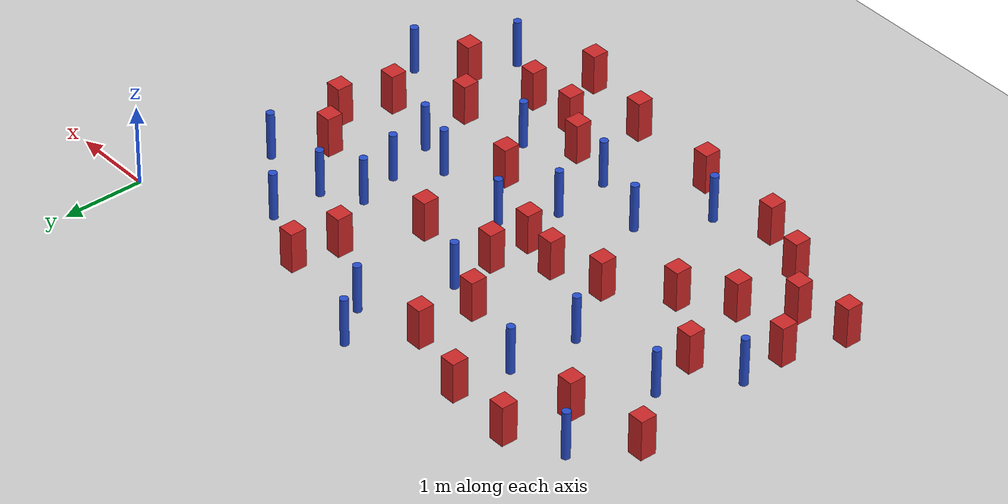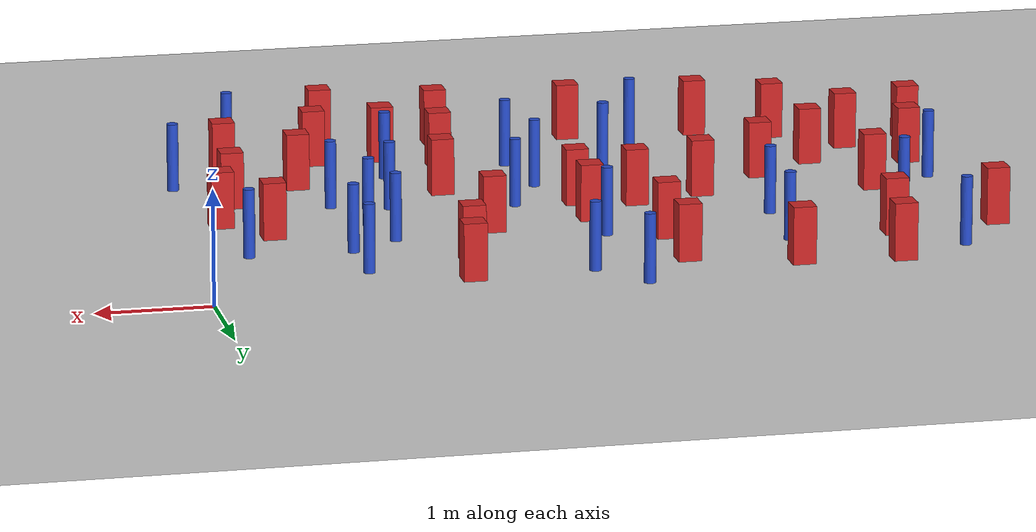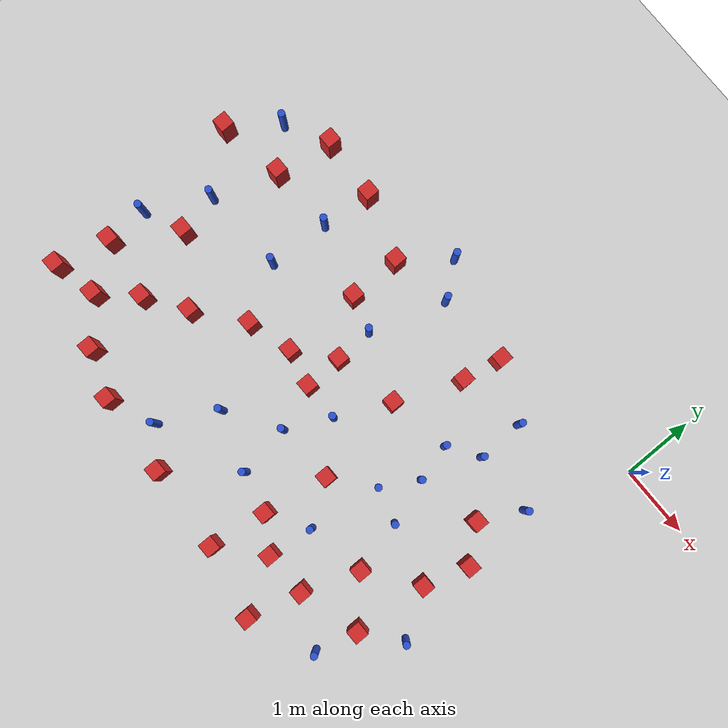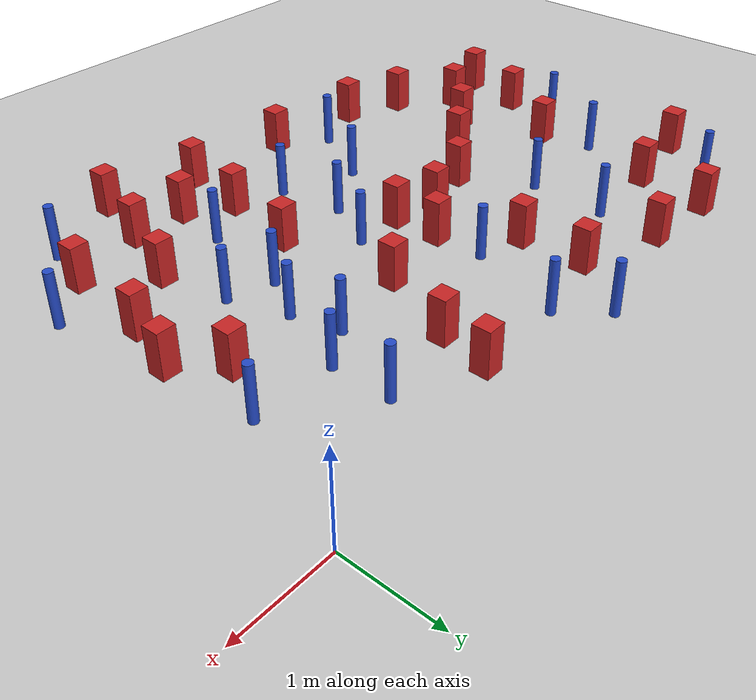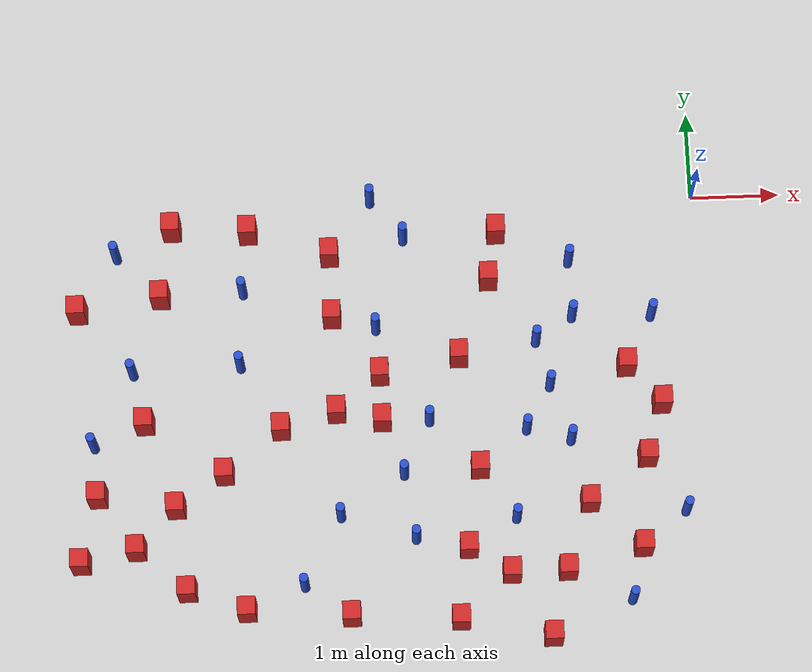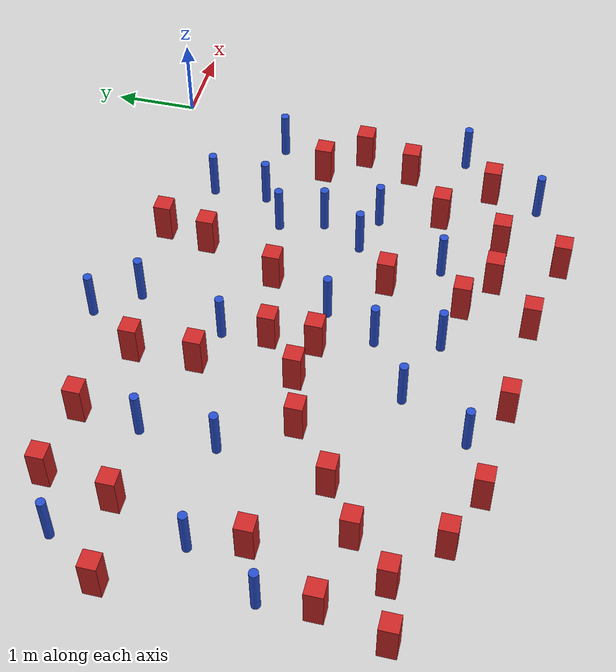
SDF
<sdf version="1.6">
 <world name="default">
  <model name="ground_plane">
   <static>1</static>
   <link name="link">
    <collision name="collision">
     <geometry><plane><normal>0 0 1</normal><size>100 100</size></plane></geometry>
     <surface><friction><ode><mu>100</mu><mu2>50</mu2></ode></friction></surface>
    </collision>
    <visual name="visual">
     <cast_shadows>0</cast_shadows>
     <geometry><plane><normal>0 0 1</normal><size>100 100</size></plane></geometry>
     <material>
      <ambient>1.0 1.0 1.0 1.0</ambient>
      <diffuse>0.8 0.8 0.8 1.0</diffuse>
      <specular>0.01 0.01 0.01 1.000000</specular>
     </material>
    </visual>
   </link>
  </model>
  <model name="pole_obstacle0">
   <static>true</static>
   <pose>-2.14201029475 -3.68788135447 2.88873142074e-08 -9.90536690232e-09 4.6021994898e-07 -1.20965994968e-07</pose>
   <link name="link">
    <pose>0 0 0.3 0 -0 0</pose>
    <inertial>
     <mass>1</mass>
     <inertia><ixx>0.145833</ixx><ixy>0</ixy><ixz>0</ixz><iyy>0.145833</iyy><iyz>0</iyz><izz>0.125</izz></inertia>
    </inertial>
    <collision name="collision">
     <geometry><cylinder><radius>0.05</radius><length>.6</length></cylinder></geometry>
    </collision>
    <visual name="visual">
     <geometry><cylinder><radius>0.05</radius><length>.6</length></cylinder></geometry>
     <material>
      <script><name>Gazebo/Blue</name><uri>file://media/materials/scripts/gazebo.material</uri></script>
     </material>
    </visual>
   </link>
  </model>
  <model name="pole_obstacle18">
   <static>true</static>
   <pose>-1.43963287197 -0.740293732922 2.88873142074e-08 -9.90536689692e-09 4.60219948993e-07 -1.20965994958e-07</pose>
   <link name="link">
    <pose>0 0 0.3 0 -0 0</pose>
    <inertial>
     <mass>1</mass>
     <inertia><ixx>0.145833</ixx><ixy>0</ixy><ixz>0</ixz><iyy>0.145833</iyy><iyz>0</iyz><izz>0.125</izz></inertia>
    </inertial>
    <collision name="collision">
     <geometry><cylinder><radius>0.05</radius><length>.6</length></cylinder></geometry>
    </collision>
    <visual name="visual">
     <geometry><cylinder><radius>0.05</radius><length>.6</length></cylinder></geometry>
     <material>
      <script><name>Gazebo/Blue</name><uri>file://media/materials/scripts/gazebo.material</uri></script>
     </material>
    </visual>
   </link>
  </model>
  <model name="square_post_obstacle32">
   <static>true</static>
   <pose>-1.60397399071 -4.29752524719 8.22691968438e-08 7.2212513382e-06 -7.54495500217e-07 2.29674213826e-05</pose>
   <link name="link">
    <pose>0 0 0.25 0 -0 0</pose>
    <inertial>
     <mass>100</mass>
     <inertia>
      <ixx>0.166667</ixx>
      <ixy>0</ixy>
      <ixz>0</ixz>
      <iyy>0.166667</iyy>
      <iyz>0</iyz>
      <izz>0.166667</izz>
     </inertia>
    </inertial>
    <collision name="collision"><geometry><box><size>.2 .2 .5</size></box></geometry></collision>
    <visual name="visual">
     <geometry><box><size>.2 .2 .5</size></box></geometry>
     <material>
      <script><name>Gazebo/Red</name><uri>file://media/materials/scripts/gazebo.material</uri></script>
     </material>
    </visual>
   </link>
  </model>
  <model name="square_post_obstacle33">
   <static>true</static>
   <pose>-6.96177283811 -4.0509409341 8.22691968438e-08 7.2212513382e-06 -7.54495500217e-07 2.29674213826e-05</pose>
   <link name="link">
    <pose>0 0 0.25 0 -0 0</pose>
    <inertial>
     <mass>100</mass>
     <inertia>
      <ixx>0.166667</ixx>
      <ixy>0</ixy>
      <ixz>0</ixz>
      <iyy>0.166667</iyy>
      <iyz>0</iyz>
      <izz>0.166667</izz>
     </inertia>
    </inertial>
    <collision name="collision"><geometry><box><size>.2 .2 .5</size></box></geometry></collision>
    <visual name="visual">
     <geometry><box><size>.2 .2 .5</size></box></geometry>
     <material>
      <script><name>Gazebo/Red</name><uri>file://media/materials/scripts/gazebo.material</uri></script>
     </material>
    </visual>
   </link>
  </model>
  <model name="pole_obstacle28">
   <static>true</static>
   <pose>-3.66332309198 0.0499657390168 2.88873142074e-08 -9.905366921e-09 4.60219948936e-07 -1.20965994985e-07</pose>
   <link name="link">
    <pose>0 0 0.3 0 -0 0</pose>
    <inertial>
     <mass>1</mass>
     <inertia><ixx>0.145833</ixx><ixy>0</ixy><ixz>0</ixz><iyy>0.145833</iyy><iyz>0</iyz><izz>0.125</izz></inertia>
    </inertial>
    <collision name="collision">
     <geometry><cylinder><radius>0.05</radius><length>.6</length></cylinder></geometry>
    </collision>
    <visual name="visual">
     <geometry><cylinder><radius>0.05</radius><length>.6</length></cylinder></geometry>
     <material>
      <script><name>Gazebo/Blue</name><uri>file://media/materials/scripts/gazebo.material</uri></script>
     </material>
    </visual>
   </link>
  </model>
  <model name="pole_obstacle29">
   <static>true</static>
   <pose>-5.12668425544 -0.987686149836 2.88873142074e-08 -9.90536689779e-09 4.60219948991e-07 -1.20965994959e-07</pose>
   <link name="link">
    <pose>0 0 0.3 0 -0 0</pose>
    <inertial>
     <mass>1</mass>
     <inertia><ixx>0.145833</ixx><ixy>0</ixy><ixz>0</ixz><iyy>0.145833</iyy><iyz>0</iyz><izz>0.125</izz></inertia>
    </inertial>
    <collision name="collision">
     <geometry><cylinder><radius>0.05</radius><length>.6</length></cylinder></geometry>
    </collision>
    <visual name="visual">
     <geometry><cylinder><radius>0.05</radius><length>.6</length></cylinder></geometry>
     <material>
      <script><name>Gazebo/Blue</name><uri>file://media/materials/scripts/gazebo.material</uri></script>
     </material>
    </visual>
   </link>
  </model>
  <model name="square_post_obstacle34">
   <static>true</static>
   <pose>-5.91761013218 -0.226882809357 8.22691968438e-08 7.2212513382e-06 -7.54495500217e-07 2.29674213826e-05</pose>
   <link name="link">
    <pose>0 0 0.25 0 -0 0</pose>
    <inertial>
     <mass>100</mass>
     <inertia>
      <ixx>0.166667</ixx>
      <ixy>0</ixy>
      <ixz>0</ixz>
      <iyy>0.166667</iyy>
      <iyz>0</iyz>
      <izz>0.166667</izz>
     </inertia>
    </inertial>
    <collision name="collision"><geometry><box><size>.2 .2 .5</size></box></geometry></collision>
    <visual name="visual">
     <geometry><box><size>.2 .2 .5</size></box></geometry>
     <material>
      <script><name>Gazebo/Red</name><uri>file://media/materials/scripts/gazebo.material</uri></script>
     </material>
    </visual>
   </link>
  </model>
  <model name="pole_obstacle32">
   <static>true</static>
   <pose>-3.30271459691 -0.412080619254 2.88873142074e-08 -9.90536690784e-09 4.60219948967e-07 -1.20965994976e-07</pose>
   <link name="link">
    <pose>0 0 0.3 0 -0 0</pose>
    <inertial>
     <mass>1</mass>
     <inertia><ixx>0.145833</ixx><ixy>0</ixy><ixz>0</ixz><iyy>0.145833</iyy><iyz>0</iyz><izz>0.125</izz></inertia>
    </inertial>
    <collision name="collision">
     <geometry><cylinder><radius>0.05</radius><length>.6</length></cylinder></geometry>
    </collision>
    <visual name="visual">
     <geometry><cylinder><radius>0.05</radius><length>.6</length></cylinder></geometry>
     <material>
      <script><name>Gazebo/Blue</name><uri>file://media/materials/scripts/gazebo.material</uri></script>
     </material>
    </visual>
   </link>
  </model>
  <model name="pole_obstacle34">
   <static>true</static>
   <pose>-3.63977779971 -1.46137403653 2.88873142074e-08 -9.90536691123e-09 4.60219948959e-07 -1.20965994982e-07</pose>
   <link name="link">
    <pose>0 0 0.3 0 -0 0</pose>
    <inertial>
     <mass>1</mass>
     <inertia><ixx>0.145833</ixx><ixy>0</ixy><ixz>0</ixz><iyy>0.145833</iyy><iyz>0</iyz><izz>0.125</izz></inertia>
    </inertial>
    <collision name="collision">
     <geometry><cylinder><radius>0.05</radius><length>.6</length></cylinder></geometry>
    </collision>
    <visual name="visual">
     <geometry><cylinder><radius>0.05</radius><length>.6</length></cylinder></geometry>
     <material>
      <script><name>Gazebo/Blue</name><uri>file://media/materials/scripts/gazebo.material</uri></script>
     </material>
    </visual>
   </link>
  </model>
  <model name="pole_obstacle35">
   <static>true</static>
   <pose>-0.537845750182 -1.40709177171 2.88873142074e-08 -9.90536689621e-09 4.60219948994e-07 -1.20965994957e-07</pose>
   <link name="link">
    <pose>0 0 0.3 0 -0 0</pose>
    <inertial>
     <mass>1</mass>
     <inertia><ixx>0.145833</ixx><ixy>0</ixy><ixz>0</ixz><iyy>0.145833</iyy><iyz>0</iyz><izz>0.125</izz></inertia>
    </inertial>
    <collision name="collision">
     <geometry><cylinder><radius>0.05</radius><length>.6</length></cylinder></geometry>
    </collision>
    <visual name="visual">
     <geometry><cylinder><radius>0.05</radius><length>.6</length></cylinder></geometry>
     <material>
      <script><name>Gazebo/Blue</name><uri>file://media/materials/scripts/gazebo.material</uri></script>
     </material>
    </visual>
   </link>
  </model>
  <model name="square_post_obstacle36">
   <static>true</static>
   <pose>-1.3263271981 -3.53499737316 8.22691968438e-08 7.2212513382e-06 -7.54495500217e-07 2.29674213826e-05</pose>
   <link name="link">
    <pose>0 0 0.25 0 -0 0</pose>
    <inertial>
     <mass>100</mass>
     <inertia>
      <ixx>0.166667</ixx>
      <ixy>0</ixy>
      <ixz>0</ixz>
      <iyy>0.166667</iyy>
      <iyz>0</iyz>
      <izz>0.166667</izz>
     </inertia>
    </inertial>
    <collision name="collision"><geometry><box><size>.2 .2 .5</size></box></geometry></collision>
    <visual name="visual">
     <geometry><box><size>.2 .2 .5</size></box></geometry>
     <material>
      <script><name>Gazebo/Red</name><uri>file://media/materials/scripts/gazebo.material</uri></script>
     </material>
    </visual>
   </link>
  </model>
  <model name="square_post_obstacle39">
   <static>true</static>
   <pose>-3.61016538908 -2.00022912699 8.22691968438e-08 7.22125133819e-06 -7.54495500217e-07 2.29674213826e-05</pose>
   <link name="link">
    <pose>0 0 0.25 0 -0 0</pose>
    <inertial>
     <mass>100</mass>
     <inertia>
      <ixx>0.166667</ixx>
      <ixy>0</ixy>
      <ixz>0</ixz>
      <iyy>0.166667</iyy>
      <iyz>0</iyz>
      <izz>0.166667</izz>
     </inertia>
    </inertial>
    <collision name="collision"><geometry><box><size>.2 .2 .5</size></box></geometry></collision>
    <visual name="visual">
     <geometry><box><size>.2 .2 .5</size></box></geometry>
     <material>
      <script><name>Gazebo/Red</name><uri>file://media/materials/scripts/gazebo.material</uri></script>
     </material>
    </visual>
   </link>
  </model>
  <model name="square_post_obstacle47">
   <static>true</static>
   <pose>-5.05521894171 -0.291155681493 8.22691968438e-08 7.2212513382e-06 -7.54495500217e-07 2.29674213826e-05</pose>
   <link name="link">
    <pose>0 0 0.25 0 -0 0</pose>
    <inertial>
     <mass>100</mass>
     <inertia>
      <ixx>0.166667</ixx>
      <ixy>0</ixy>
      <ixz>0</ixz>
      <iyy>0.166667</iyy>
      <iyz>0</iyz>
      <izz>0.166667</izz>
     </inertia>
    </inertial>
    <collision name="collision"><geometry><box><size>.2 .2 .5</size></box></geometry></collision>
    <visual name="visual">
     <geometry><box><size>.2 .2 .5</size></box></geometry>
     <material>
      <script><name>Gazebo/Red</name><uri>file://media/materials/scripts/gazebo.material</uri></script>
     </material>
    </visual>
   </link>
  </model>
  <model name="pole_obstacle48">
   <static>true</static>
   <pose>-1.70938843151 -2.18825370533 2.88873142074e-08 -9.90536689791e-09 4.6021994899e-07 -1.20965994959e-07</pose>
   <link name="link">
    <pose>0 0 0.3 0 -0 0</pose>
    <inertial>
     <mass>1</mass>
     <inertia><ixx>0.145833</ixx><ixy>0</ixy><ixz>0</ixz><iyy>0.145833</iyy><iyz>0</iyz><izz>0.125</izz></inertia>
    </inertial>
    <collision name="collision">
     <geometry><cylinder><radius>0.05</radius><length>.6</length></cylinder></geometry>
    </collision>
    <visual name="visual">
     <geometry><cylinder><radius>0.05</radius><length>.6</length></cylinder></geometry>
     <material>
      <script><name>Gazebo/Blue</name><uri>file://media/materials/scripts/gazebo.material</uri></script>
     </material>
    </visual>
   </link>
  </model>
  <model name="square_post_obstacle51">
   <static>true</static>
   <pose>-6.34993966018 -3.91682586091 8.22691968438e-08 7.22125133819e-06 -7.54495500217e-07 2.29674213826e-05</pose>
   <link name="link">
    <pose>0 0 0.25 0 -0 0</pose>
    <inertial>
     <mass>100</mass>
     <inertia>
      <ixx>0.166667</ixx>
      <ixy>0</ixy>
      <ixz>0</ixz>
      <iyy>0.166667</iyy>
      <iyz>0</iyz>
      <izz>0.166667</izz>
     </inertia>
    </inertial>
    <collision name="collision"><geometry><box><size>.2 .2 .5</size></box></geometry></collision>
    <visual name="visual">
     <geometry><box><size>.2 .2 .5</size></box></geometry>
     <material>
      <script><name>Gazebo/Red</name><uri>file://media/materials/scripts/gazebo.material</uri></script>
     </material>
    </visual>
   </link>
  </model>
  <model name="pole_obstacle54">
   <static>true</static>
   <pose>-3.37114081809 -3.15126703012 2.88873142074e-08 -9.90536689597e-09 4.60219948995e-07 -1.20965994957e-07</pose>
   <link name="link">
    <pose>0 0 0.3 0 -0 0</pose>
    <inertial>
     <mass>1</mass>
     <inertia><ixx>0.145833</ixx><ixy>0</ixy><ixz>0</ixz><iyy>0.145833</iyy><iyz>0</iyz><izz>0.125</izz></inertia>
    </inertial>
    <collision name="collision">
     <geometry><cylinder><radius>0.05</radius><length>.6</length></cylinder></geometry>
    </collision>
    <visual name="visual">
     <geometry><cylinder><radius>0.05</radius><length>.6</length></cylinder></geometry>
     <material>
      <script><name>Gazebo/Blue</name><uri>file://media/materials/scripts/gazebo.material</uri></script>
     </material>
    </visual>
   </link>
  </model>
  <model name="square_post_obstacle59">
   <static>true</static>
   <pose>-2.68510620087 -4.01180483356 8.22691968438e-08 7.2212513382e-06 -7.54495500217e-07 2.29674213826e-05</pose>
   <link name="link">
    <pose>0 0 0.25 0 -0 0</pose>
    <inertial>
     <mass>100</mass>
     <inertia>
      <ixx>0.166667</ixx>
      <ixy>0</ixy>
      <ixz>0</ixz>
      <iyy>0.166667</iyy>
      <iyz>0</iyz>
      <izz>0.166667</izz>
     </inertia>
    </inertial>
    <collision name="collision"><geometry><box><size>.2 .2 .5</size></box></geometry></collision>
    <visual name="visual">
     <geometry><box><size>.2 .2 .5</size></box></geometry>
     <material>
      <script><name>Gazebo/Red</name><uri>file://media/materials/scripts/gazebo.material</uri></script>
     </material>
    </visual>
   </link>
  </model>
  <model name="square_post_obstacle62">
   <static>true</static>
   <pose>-0.759701949642 -4.05870089898 8.22691968438e-08 7.2212513382e-06 -7.54495500217e-07 2.29674213826e-05</pose>
   <link name="link">
    <pose>0 0 0.25 0 -0 0</pose>
    <inertial>
     <mass>100</mass>
     <inertia>
      <ixx>0.166667</ixx>
      <ixy>0</ixy>
      <ixz>0</ixz>
      <iyy>0.166667</iyy>
      <iyz>0</iyz>
      <izz>0.166667</izz>
     </inertia>
    </inertial>
    <collision name="collision"><geometry><box><size>.2 .2 .5</size></box></geometry></collision>
    <visual name="visual">
     <geometry><box><size>.2 .2 .5</size></box></geometry>
     <material>
      <script><name>Gazebo/Red</name><uri>file://media/materials/scripts/gazebo.material</uri></script>
     </material>
    </visual>
   </link>
  </model>
  <model name="pole_obstacle62">
   <static>true</static>
   <pose>-6.37447288988 -1.89802834901 2.88873142074e-08 -9.90536689445e-09 4.60219948999e-07 -1.20965994956e-07</pose>
   <link name="link">
    <pose>0 0 0.3 0 -0 0</pose>
    <inertial>
     <mass>1</mass>
     <inertia><ixx>0.145833</ixx><ixy>0</ixy><ixz>0</ixz><iyy>0.145833</iyy><iyz>0</iyz><izz>0.125</izz></inertia>
    </inertial>
    <collision name="collision">
     <geometry><cylinder><radius>0.05</radius><length>.6</length></cylinder></geometry>
    </collision>
    <visual name="visual">
     <geometry><cylinder><radius>0.05</radius><length>.6</length></cylinder></geometry>
     <material>
      <script><name>Gazebo/Blue</name><uri>file://media/materials/scripts/gazebo.material</uri></script>
     </material>
    </visual>
   </link>
  </model>
  <model name="pole_obstacle63">
   <static>true</static>
   <pose>-6.54925913432 -0.52366604144 2.88873142074e-08 -9.90536689968e-09 4.60219948986e-07 -1.20965994963e-07</pose>
   <link name="link">
    <pose>0 0 0.3 0 -0 0</pose>
    <inertial>
     <mass>1</mass>
     <inertia><ixx>0.145833</ixx><ixy>0</ixy><ixz>0</ixz><iyy>0.145833</iyy><iyz>0</iyz><izz>0.125</izz></inertia>
    </inertial>
    <collision name="collision">
     <geometry><cylinder><radius>0.05</radius><length>.6</length></cylinder></geometry>
    </collision>
    <visual name="visual">
     <geometry><cylinder><radius>0.05</radius><length>.6</length></cylinder></geometry>
     <material>
      <script><name>Gazebo/Blue</name><uri>file://media/materials/scripts/gazebo.material</uri></script>
     </material>
    </visual>
   </link>
  </model>
  <model name="square_post_obstacle71">
   <static>true</static>
   <pose>-5.90890364408 -3.45529140381 8.22691968438e-08 7.2212513382e-06 -7.54495500217e-07 2.29674213826e-05</pose>
   <link name="link">
    <pose>0 0 0.25 0 -0 0</pose>
    <inertial>
     <mass>100</mass>
     <inertia>
      <ixx>0.166667</ixx>
      <ixy>0</ixy>
      <ixz>0</ixz>
      <iyy>0.166667</iyy>
      <iyz>0</iyz>
      <izz>0.166667</izz>
     </inertia>
    </inertial>
    <collision name="collision"><geometry><box><size>.2 .2 .5</size></box></geometry></collision>
    <visual name="visual">
     <geometry><box><size>.2 .2 .5</size></box></geometry>
     <material>
      <script><name>Gazebo/Red</name><uri>file://media/materials/scripts/gazebo.material</uri></script>
     </material>
    </visual>
   </link>
  </model>
  <model name="square_post_obstacle75">
   <static>true</static>
   <pose>-0.845391485321 -1.98824636678 8.22691968438e-08 7.2212513382e-06 -7.54495500217e-07 2.29674213826e-05</pose>
   <link name="link">
    <pose>0 0 0.25 0 -0 0</pose>
    <inertial>
     <mass>100</mass>
     <inertia>
      <ixx>0.166667</ixx>
      <ixy>0</ixy>
      <ixz>0</ixz>
      <iyy>0.166667</iyy>
      <iyz>0</iyz>
      <izz>0.166667</izz>
     </inertia>
    </inertial>
    <collision name="collision"><geometry><box><size>.2 .2 .5</size></box></geometry></collision>
    <visual name="visual">
     <geometry><box><size>.2 .2 .5</size></box></geometry>
     <material>
      <script><name>Gazebo/Red</name><uri>file://media/materials/scripts/gazebo.material</uri></script>
     </material>
    </visual>
   </link>
  </model>
  <model name="square_post_obstacle76">
   <static>true</static>
   <pose>-3.99669923354 -4.73402493991 8.22691968438e-08 7.22125133819e-06 -7.54495500217e-07 2.29674213826e-05</pose>
   <link name="link">
    <pose>0 0 0.25 0 -0 0</pose>
    <inertial>
     <mass>100</mass>
     <inertia>
      <ixx>0.166667</ixx>
      <ixy>0</ixy>
      <ixz>0</ixz>
      <iyy>0.166667</iyy>
      <iyz>0</iyz>
      <izz>0.166667</izz>
     </inertia>
    </inertial>
    <collision name="collision"><geometry><box><size>.2 .2 .5</size></box></geometry></collision>
    <visual name="visual">
     <geometry><box><size>.2 .2 .5</size></box></geometry>
     <material>
      <script><name>Gazebo/Red</name><uri>file://media/materials/scripts/gazebo.material</uri></script>
     </material>
    </visual>
   </link>
  </model>
  <model name="pole_obstacle72">
   <static>true</static>
   <pose>-1.42830992179 -1.39045485473 2.88873142074e-08 -9.90536689672e-09 4.60219948993e-07 -1.20965994959e-07</pose>
   <link name="link">
    <pose>0 0 0.3 0 -0 0</pose>
    <inertial>
     <mass>1</mass>
     <inertia><ixx>0.145833</ixx><ixy>0</ixy><ixz>0</ixz><iyy>0.145833</iyy><iyz>0</iyz><izz>0.125</izz></inertia>
    </inertial>
    <collision name="collision">
     <geometry><cylinder><radius>0.05</radius><length>.6</length></cylinder></geometry>
    </collision>
    <visual name="visual">
     <geometry><cylinder><radius>0.05</radius><length>.6</length></cylinder></geometry>
     <material>
      <script><name>Gazebo/Blue</name><uri>file://media/materials/scripts/gazebo.material</uri></script>
     </material>
    </visual>
   </link>
  </model>
  <model name="pole_obstacle75">
   <static>true</static>
   <pose>-0.259279563967 -3.67015046062 2.88873142074e-08 -9.90536689433e-09 4.60219948999e-07 -1.20965994955e-07</pose>
   <link name="link">
    <pose>0 0 0.3 0 -0 0</pose>
    <inertial>
     <mass>1</mass>
     <inertia><ixx>0.145833</ixx><ixy>0</ixy><ixz>0</ixz><iyy>0.145833</iyy><iyz>0</iyz><izz>0.125</izz></inertia>
    </inertial>
    <collision name="collision">
     <geometry><cylinder><radius>0.05</radius><length>.6</length></cylinder></geometry>
    </collision>
    <visual name="visual">
     <geometry><cylinder><radius>0.05</radius><length>.6</length></cylinder></geometry>
     <material>
      <script><name>Gazebo/Blue</name><uri>file://media/materials/scripts/gazebo.material</uri></script>
     </material>
    </visual>
   </link>
  </model>
  <model name="square_post_obstacle86">
   <static>true</static>
   <pose>-5.14202955763 -4.64403465096 8.22691968438e-08 7.22125133819e-06 -7.54495500217e-07 2.29674213826e-05</pose>
   <link name="link">
    <pose>0 0 0.25 0 -0 0</pose>
    <inertial>
     <mass>100</mass>
     <inertia>
      <ixx>0.166667</ixx>
      <ixy>0</ixy>
      <ixz>0</ixz>
      <iyy>0.166667</iyy>
      <iyz>0</iyz>
      <izz>0.166667</izz>
     </inertia>
    </inertial>
    <collision name="collision"><geometry><box><size>.2 .2 .5</size></box></geometry></collision>
    <visual name="visual">
     <geometry><box><size>.2 .2 .5</size></box></geometry>
     <material>
      <script><name>Gazebo/Red</name><uri>file://media/materials/scripts/gazebo.material</uri></script>
     </material>
    </visual>
   </link>
  </model>
  <model name="pole_obstacle97">
   <static>true</static>
   <pose>-4.08654080459 -3.60799951792 2.88873142074e-08 -9.90536690245e-09 4.6021994898e-07 -1.20965994966e-07</pose>
   <link name="link">
    <pose>0 0 0.3 0 -0 0</pose>
    <inertial>
     <mass>1</mass>
     <inertia><ixx>0.145833</ixx><ixy>0</ixy><ixz>0</ixz><iyy>0.145833</iyy><iyz>0</iyz><izz>0.125</izz></inertia>
    </inertial>
    <collision name="collision">
     <geometry><cylinder><radius>0.05</radius><length>.6</length></cylinder></geometry>
    </collision>
    <visual name="visual">
     <geometry><cylinder><radius>0.05</radius><length>.6</length></cylinder></geometry>
     <material>
      <script><name>Gazebo/Blue</name><uri>file://media/materials/scripts/gazebo.material</uri></script>
     </material>
    </visual>
   </link>
  </model>
  <model name="square_post_obstacle96">
   <static>true</static>
   <pose>-0.471499157404 -2.43140440503 8.22691968438e-08 7.2212513382e-06 -7.54495500217e-07 2.29674213826e-05</pose>
   <link name="link">
    <pose>0 0 0.25 0 -0 0</pose>
    <inertial>
     <mass>100</mass>
     <inertia>
      <ixx>0.166667</ixx>
      <ixy>0</ixy>
      <ixz>0</ixz>
      <iyy>0.166667</iyy>
      <iyz>0</iyz>
      <izz>0.166667</izz>
     </inertia>
    </inertial>
    <collision name="collision"><geometry><box><size>.2 .2 .5</size></box></geometry></collision>
    <visual name="visual">
     <geometry><box><size>.2 .2 .5</size></box></geometry>
     <material>
      <script><name>Gazebo/Red</name><uri>file://media/materials/scripts/gazebo.material</uri></script>
     </material>
    </visual>
   </link>
  </model>
  <model name="pole_obstacle112">
   <static>true</static>
   <pose>-4.50473013319 -4.38162534563 2.88873142074e-08 -9.90536690842e-09 4.60219948965e-07 -1.20965994976e-07</pose>
   <link name="link">
    <pose>0 0 0.3 0 -0 0</pose>
    <inertial>
     <mass>1</mass>
     <inertia><ixx>0.145833</ixx><ixy>0</ixy><ixz>0</ixz><iyy>0.145833</iyy><iyz>0</iyz><izz>0.125</izz></inertia>
    </inertial>
    <collision name="collision">
     <geometry><cylinder><radius>0.05</radius><length>.6</length></cylinder></geometry>
    </collision>
    <visual name="visual">
     <geometry><cylinder><radius>0.05</radius><length>.6</length></cylinder></geometry>
     <material>
      <script><name>Gazebo/Blue</name><uri>file://media/materials/scripts/gazebo.material</uri></script>
     </material>
    </visual>
   </link>
  </model>
  <model name="square_post_obstacle100">
   <static>true</static>
   <pose>-0.661795972691 -3.04216716225 8.22691968438e-08 7.2212513382e-06 -7.54495500217e-07 2.29674213826e-05</pose>
   <link name="link">
    <pose>0 0 0.25 0 -0 0</pose>
    <inertial>
     <mass>100</mass>
     <inertia>
      <ixx>0.166667</ixx>
      <ixy>0</ixy>
      <ixz>0</ixz>
      <iyy>0.166667</iyy>
      <iyz>0</iyz>
      <izz>0.166667</izz>
     </inertia>
    </inertial>
    <collision name="collision"><geometry><box><size>.2 .2 .5</size></box></geometry></collision>
    <visual name="visual">
     <geometry><box><size>.2 .2 .5</size></box></geometry>
     <material>
      <script><name>Gazebo/Red</name><uri>file://media/materials/scripts/gazebo.material</uri></script>
     </material>
    </visual>
   </link>
  </model>
  <model name="square_post_obstacle101">
   <static>true</static>
   <pose>-4.13893400126 -0.588104634137 8.22691968438e-08 7.22125133819e-06 -7.54495500217e-07 2.29674213826e-05</pose>
   <link name="link">
    <pose>0 0 0.25 0 -0 0</pose>
    <inertial>
     <mass>100</mass>
     <inertia>
      <ixx>0.166667</ixx>
      <ixy>0</ixy>
      <ixz>0</ixz>
      <iyy>0.166667</iyy>
      <iyz>0</iyz>
      <izz>0.166667</izz>
     </inertia>
    </inertial>
    <collision name="collision"><geometry><box><size>.2 .2 .5</size></box></geometry></collision>
    <visual name="visual">
     <geometry><box><size>.2 .2 .5</size></box></geometry>
     <material>
      <script><name>Gazebo/Red</name><uri>file://media/materials/scripts/gazebo.material</uri></script>
     </material>
    </visual>
   </link>
  </model>
  <model name="pole_obstacle114">
   <static>true</static>
   <pose>-1.49805010303 -2.81780694302 2.88873142074e-08 -9.90536689791e-09 4.6021994899e-07 -1.20965994959e-07</pose>
   <link name="link">
    <pose>0 0 0.3 0 -0 0</pose>
    <inertial>
     <mass>1</mass>
     <inertia><ixx>0.145833</ixx><ixy>0</ixy><ixz>0</ixz><iyy>0.145833</iyy><iyz>0</iyz><izz>0.125</izz></inertia>
    </inertial>
    <collision name="collision">
     <geometry><cylinder><radius>0.05</radius><length>.6</length></cylinder></geometry>
    </collision>
    <visual name="visual">
     <geometry><cylinder><radius>0.05</radius><length>.6</length></cylinder></geometry>
     <material>
      <script><name>Gazebo/Blue</name><uri>file://media/materials/scripts/gazebo.material</uri></script>
     </material>
    </visual>
   </link>
  </model>
  <model name="square_post_obstacle102">
   <static>true</static>
   <pose>-4.72795836613 -2.59409140931 8.22691968438e-08 7.2212513382e-06 -7.54495500217e-07 2.29674213826e-05</pose>
   <link name="link">
    <pose>0 0 0.25 0 -0 0</pose>
    <inertial>
     <mass>100</mass>
     <inertia>
      <ixx>0.166667</ixx>
      <ixy>0</ixy>
      <ixz>0</ixz>
      <iyy>0.166667</iyy>
      <iyz>0</iyz>
      <izz>0.166667</izz>
     </inertia>
    </inertial>
    <collision name="collision"><geometry><box><size>.2 .2 .5</size></box></geometry></collision>
    <visual name="visual">
     <geometry><box><size>.2 .2 .5</size></box></geometry>
     <material>
      <script><name>Gazebo/Red</name><uri>file://media/materials/scripts/gazebo.material</uri></script>
     </material>
    </visual>
   </link>
  </model>
  <model name="pole_obstacle120">
   <static>true</static>
   <pose>-3.26216479655 -3.88536079101 2.88873142074e-08 -9.90536690232e-09 4.6021994898e-07 -1.20965994968e-07</pose>
   <link name="link">
    <pose>0 0 0.3 0 -0 0</pose>
    <inertial>
     <mass>1</mass>
     <inertia><ixx>0.145833</ixx><ixy>0</ixy><ixz>0</ixz><iyy>0.145833</iyy><iyz>0</iyz><izz>0.125</izz></inertia>
    </inertial>
    <collision name="collision">
     <geometry><cylinder><radius>0.05</radius><length>.6</length></cylinder></geometry>
    </collision>
    <visual name="visual">
     <geometry><cylinder><radius>0.05</radius><length>.6</length></cylinder></geometry>
     <material>
      <script><name>Gazebo/Blue</name><uri>file://media/materials/scripts/gazebo.material</uri></script>
     </material>
    </visual>
   </link>
  </model>
  <model name="square_post_obstacle113">
   <static>true</static>
   <pose>-4.12753508135 -1.31452757224 8.22691968438e-08 7.2212513382e-06 -7.54495500217e-07 2.29674213826e-05</pose>
   <link name="link">
    <pose>0 0 0.25 0 -0 0</pose>
    <inertial>
     <mass>100</mass>
     <inertia>
      <ixx>0.166667</ixx>
      <ixy>0</ixy>
      <ixz>0</ixz>
      <iyy>0.166667</iyy>
      <iyz>0</iyz>
      <izz>0.166667</izz>
     </inertia>
    </inertial>
    <collision name="collision"><geometry><box><size>.2 .2 .5</size></box></geometry></collision>
    <visual name="visual">
     <geometry><box><size>.2 .2 .5</size></box></geometry>
     <material>
      <script><name>Gazebo/Red</name><uri>file://media/materials/scripts/gazebo.material</uri></script>
     </material>
    </visual>
   </link>
  </model>
  <model name="square_post_obstacle125">
   <static>true</static>
   <pose>-6.2452204998 -2.48343256909 8.22691968438e-08 7.2212513382e-06 -7.54495500217e-07 2.29674213826e-05</pose>
   <link name="link">
    <pose>0 0 0.25 0 -0 0</pose>
    <inertial>
     <mass>100</mass>
     <inertia>
      <ixx>0.166667</ixx>
      <ixy>0</ixy>
      <ixz>0</ixz>
      <iyy>0.166667</iyy>
      <iyz>0</iyz>
      <izz>0.166667</izz>
     </inertia>
    </inertial>
    <collision name="collision"><geometry><box><size>.2 .2 .5</size></box></geometry></collision>
    <visual name="visual">
     <geometry><box><size>.2 .2 .5</size></box></geometry>
     <material>
      <script><name>Gazebo/Red</name><uri>file://media/materials/scripts/gazebo.material</uri></script>
     </material>
    </visual>
   </link>
  </model>
  <model name="square_post_obstacle131">
   <static>true</static>
   <pose>-2.25172991697 -0.376401280672 8.22691968438e-08 7.2212513382e-06 -7.54495500217e-07 2.29674213826e-05</pose>
   <link name="link">
    <pose>0 0 0.25 0 -0 0</pose>
    <inertial>
     <mass>100</mass>
     <inertia>
      <ixx>0.166667</ixx>
      <ixy>0</ixy>
      <ixz>0</ixz>
      <iyy>0.166667</iyy>
      <iyz>0</iyz>
      <izz>0.166667</izz>
     </inertia>
    </inertial>
    <collision name="collision"><geometry><box><size>.2 .2 .5</size></box></geometry></collision>
    <visual name="visual">
     <geometry><box><size>.2 .2 .5</size></box></geometry>
     <material>
      <script><name>Gazebo/Red</name><uri>file://media/materials/scripts/gazebo.material</uri></script>
     </material>
    </visual>
   </link>
  </model>
  <model name="square_post_obstacle138">
   <static>true</static>
   <pose>-4.104213596 -2.41799253251 8.22691968438e-08 7.2212513382e-06 -7.54495500217e-07 2.29674213826e-05</pose>
   <link name="link">
    <pose>0 0 0.25 0 -0 0</pose>
    <inertial>
     <mass>100</mass>
     <inertia>
      <ixx>0.166667</ixx>
      <ixy>0</ixy>
      <ixz>0</ixz>
      <iyy>0.166667</iyy>
      <iyz>0</iyz>
      <izz>0.166667</izz>
     </inertia>
    </inertial>
    <collision name="collision"><geometry><box><size>.2 .2 .5</size></box></geometry></collision>
    <visual name="visual">
     <geometry><box><size>.2 .2 .5</size></box></geometry>
     <material>
      <script><name>Gazebo/Red</name><uri>file://media/materials/scripts/gazebo.material</uri></script>
     </material>
    </visual>
   </link>
  </model>
  <model name="pole_obstacle149">
   <static>true</static>
   <pose>-1.84592593062 -1.6654261173 2.88873142074e-08 -9.90536689672e-09 4.60219948993e-07 -1.20965994959e-07</pose>
   <link name="link">
    <pose>0 0 0.3 0 -0 0</pose>
    <inertial>
     <mass>1</mass>
     <inertia><ixx>0.145833</ixx><ixy>0</ixy><ixz>0</ixz><iyy>0.145833</iyy><iyz>0</iyz><izz>0.125</izz></inertia>
    </inertial>
    <collision name="collision">
     <geometry><cylinder><radius>0.05</radius><length>.6</length></cylinder></geometry>
    </collision>
    <visual name="visual">
     <geometry><cylinder><radius>0.05</radius><length>.6</length></cylinder></geometry>
     <material>
      <script><name>Gazebo/Blue</name><uri>file://media/materials/scripts/gazebo.material</uri></script>
     </material>
    </visual>
   </link>
  </model>
  <model name="square_post_obstacle141">
   <static>true</static>
   <pose>-2.52834312582 -3.1111736573 8.22691968438e-08 7.2212513382e-06 -7.54495500217e-07 2.29674213826e-05</pose>
   <link name="link">
    <pose>0 0 0.25 0 -0 0</pose>
    <inertial>
     <mass>100</mass>
     <inertia>
      <ixx>0.166667</ixx>
      <ixy>0</ixy>
      <ixz>0</ixz>
      <iyy>0.166667</iyy>
      <iyz>0</iyz>
      <izz>0.166667</izz>
     </inertia>
    </inertial>
    <collision name="collision"><geometry><box><size>.2 .2 .5</size></box></geometry></collision>
    <visual name="visual">
     <geometry><box><size>.2 .2 .5</size></box></geometry>
     <material>
      <script><name>Gazebo/Red</name><uri>file://media/materials/scripts/gazebo.material</uri></script>
     </material>
    </visual>
   </link>
  </model>
  <model name="pole_obstacle153">
   <static>true</static>
   <pose>-0.901759534837 -4.64653515518 2.88873142074e-08 -9.90536689661e-09 4.60219948993e-07 -1.20965994957e-07</pose>
   <link name="link">
    <pose>0 0 0.3 0 -0 0</pose>
    <inertial>
     <mass>1</mass>
     <inertia><ixx>0.145833</ixx><ixy>0</ixy><ixz>0</ixz><iyy>0.145833</iyy><iyz>0</iyz><izz>0.125</izz></inertia>
    </inertial>
    <collision name="collision">
     <geometry><cylinder><radius>0.05</radius><length>.6</length></cylinder></geometry>
    </collision>
    <visual name="visual">
     <geometry><cylinder><radius>0.05</radius><length>.6</length></cylinder></geometry>
     <material>
      <script><name>Gazebo/Blue</name><uri>file://media/materials/scripts/gazebo.material</uri></script>
     </material>
    </visual>
   </link>
  </model>
  <model name="square_post_obstacle145">
   <static>true</static>
   <pose>-1.79592471616 -5.02807808929 8.22691968438e-08 7.2212513382e-06 -7.54495500217e-07 2.29674213826e-05</pose>
   <link name="link">
    <pose>0 0 0.25 0 -0 0</pose>
    <inertial>
     <mass>100</mass>
     <inertia>
      <ixx>0.166667</ixx>
      <ixy>0</ixy>
      <ixz>0</ixz>
      <iyy>0.166667</iyy>
      <iyz>0</iyz>
      <izz>0.166667</izz>
     </inertia>
    </inertial>
    <collision name="collision"><geometry><box><size>.2 .2 .5</size></box></geometry></collision>
    <visual name="visual">
     <geometry><box><size>.2 .2 .5</size></box></geometry>
     <material>
      <script><name>Gazebo/Red</name><uri>file://media/materials/scripts/gazebo.material</uri></script>
     </material>
    </visual>
   </link>
  </model>
  <model name="square_post_obstacle149">
   <static>true</static>
   <pose>-2.71932078311 -1.81885864436 8.22691968438e-08 7.2212513382e-06 -7.54495500217e-07 2.29674213826e-05</pose>
   <link name="link">
    <pose>0 0 0.25 0 -0 0</pose>
    <inertial>
     <mass>100</mass>
     <inertia>
      <ixx>0.166667</ixx>
      <ixy>0</ixy>
      <ixz>0</ixz>
      <iyy>0.166667</iyy>
      <iyz>0</iyz>
      <izz>0.166667</izz>
     </inertia>
    </inertial>
    <collision name="collision"><geometry><box><size>.2 .2 .5</size></box></geometry></collision>
    <visual name="visual">
     <geometry><box><size>.2 .2 .5</size></box></geometry>
     <material>
      <script><name>Gazebo/Red</name><uri>file://media/materials/scripts/gazebo.material</uri></script>
     </material>
    </visual>
   </link>
  </model>
  <model name="pole_obstacle159">
   <static>true</static>
   <pose>-5.16878107984 -1.85122569998 2.88873142074e-08 -9.90536689445e-09 4.60219948999e-07 -1.20965994956e-07</pose>
   <link name="link">
    <pose>0 0 0.3 0 -0 0</pose>
    <inertial>
     <mass>1</mass>
     <inertia><ixx>0.145833</ixx><ixy>0</ixy><ixz>0</ixz><iyy>0.145833</iyy><iyz>0</iyz><izz>0.125</izz></inertia>
    </inertial>
    <collision name="collision">
     <geometry><cylinder><radius>0.05</radius><length>.6</length></cylinder></geometry>
    </collision>
    <visual name="visual">
     <geometry><cylinder><radius>0.05</radius><length>.6</length></cylinder></geometry>
     <material>
      <script><name>Gazebo/Blue</name><uri>file://media/materials/scripts/gazebo.material</uri></script>
     </material>
    </visual>
   </link>
  </model>
  <model name="square_post_obstacle157">
   <static>true</static>
   <pose>-2.80103978722 -4.81177217275 8.22691968438e-08 7.2212513382e-06 -7.54495500217e-07 2.29674213826e-05</pose>
   <link name="link">
    <pose>0 0 0.25 0 -0 0</pose>
    <inertial>
     <mass>100</mass>
     <inertia>
      <ixx>0.166667</ixx>
      <ixy>0</ixy>
      <ixz>0</ixz>
      <iyy>0.166667</iyy>
      <iyz>0</iyz>
      <izz>0.166667</izz>
     </inertia>
    </inertial>
    <collision name="collision"><geometry><box><size>.2 .2 .5</size></box></geometry></collision>
    <visual name="visual">
     <geometry><box><size>.2 .2 .5</size></box></geometry>
     <material>
      <script><name>Gazebo/Red</name><uri>file://media/materials/scripts/gazebo.material</uri></script>
     </material>
    </visual>
   </link>
  </model>
  <model name="pole_obstacle165">
   <static>true</static>
   <pose>-6.81592826857 -2.72491596215 2.88873142074e-08 -9.90536690245e-09 4.6021994898e-07 -1.20965994966e-07</pose>
   <link name="link">
    <pose>0 0 0.3 0 -0 0</pose>
    <inertial>
     <mass>1</mass>
     <inertia><ixx>0.145833</ixx><ixy>0</ixy><ixz>0</ixz><iyy>0.145833</iyy><iyz>0</iyz><izz>0.125</izz></inertia>
    </inertial>
    <collision name="collision">
     <geometry><cylinder><radius>0.05</radius><length>.6</length></cylinder></geometry>
    </collision>
    <visual name="visual">
     <geometry><cylinder><radius>0.05</radius><length>.6</length></cylinder></geometry>
     <material>
      <script><name>Gazebo/Blue</name><uri>file://media/materials/scripts/gazebo.material</uri></script>
     </material>
    </visual>
   </link>
  </model>
  <model name="pole_obstacle172">
   <static>true</static>
   <pose>-3.07066692547 -2.54653372694 2.88873142074e-08 -9.90536690232e-09 4.6021994898e-07 -1.20965994968e-07</pose>
   <link name="link">
    <pose>0 0 0.3 0 -0 0</pose>
    <inertial>
     <mass>1</mass>
     <inertia><ixx>0.145833</ixx><ixy>0</ixy><ixz>0</ixz><iyy>0.145833</iyy><iyz>0</iyz><izz>0.125</izz></inertia>
    </inertial>
    <collision name="collision">
     <geometry><cylinder><radius>0.05</radius><length>.6</length></cylinder></geometry>
    </collision>
    <visual name="visual">
     <geometry><cylinder><radius>0.05</radius><length>.6</length></cylinder></geometry>
     <material>
      <script><name>Gazebo/Blue</name><uri>file://media/materials/scripts/gazebo.material</uri></script>
     </material>
    </visual>
   </link>
  </model>
  <model name="square_post_obstacle164">
   <static>true</static>
   <pose>-2.22267762517 -4.30752190034 8.22691968438e-08 7.2212513382e-06 -7.54495500217e-07 2.29674213826e-05</pose>
   <link name="link">
    <pose>0 0 0.25 0 -0 0</pose>
    <inertial>
     <mass>100</mass>
     <inertia>
      <ixx>0.166667</ixx>
      <ixy>0</ixy>
      <ixz>0</ixz>
      <iyy>0.166667</iyy>
      <iyz>0</iyz>
      <izz>0.166667</izz>
     </inertia>
    </inertial>
    <collision name="collision"><geometry><box><size>.2 .2 .5</size></box></geometry></collision>
    <visual name="visual">
     <geometry><box><size>.2 .2 .5</size></box></geometry>
     <material>
      <script><name>Gazebo/Red</name><uri>file://media/materials/scripts/gazebo.material</uri></script>
     </material>
    </visual>
   </link>
  </model>
  <model name="square_post_obstacle189">
   <static>true</static>
   <pose>-6.05363408694 -1.02034771479 8.22691968438e-08 7.22125133819e-06 -7.54495500217e-07 2.29674213826e-05</pose>
   <link name="link">
    <pose>0 0 0.25 0 -0 0</pose>
    <inertial>
     <mass>100</mass>
     <inertia>
      <ixx>0.166667</ixx>
      <ixy>0</ixy>
      <ixz>0</ixz>
      <iyy>0.166667</iyy>
      <iyz>0</iyz>
      <izz>0.166667</izz>
     </inertia>
    </inertial>
    <collision name="collision"><geometry><box><size>.2 .2 .5</size></box></geometry></collision>
    <visual name="visual">
     <geometry><box><size>.2 .2 .5</size></box></geometry>
     <material>
      <script><name>Gazebo/Red</name><uri>file://media/materials/scripts/gazebo.material</uri></script>
     </material>
    </visual>
   </link>
  </model>
  <model name="square_post_obstacle196">
   <static>true</static>
   <pose>-3.59868856235 -2.53167317601 8.22691968438e-08 7.2212513382e-06 -7.54495500217e-07 2.29674213826e-05</pose>
   <link name="link">
    <pose>0 0 0.25 0 -0 0</pose>
    <inertial>
     <mass>100</mass>
     <inertia>
      <ixx>0.166667</ixx>
      <ixy>0</ixy>
      <ixz>0</ixz>
      <iyy>0.166667</iyy>
      <iyz>0</iyz>
      <izz>0.166667</izz>
     </inertia>
    </inertial>
    <collision name="collision"><geometry><box><size>.2 .2 .5</size></box></geometry></collision>
    <visual name="visual">
     <geometry><box><size>.2 .2 .5</size></box></geometry>
     <material>
      <script><name>Gazebo/Red</name><uri>file://media/materials/scripts/gazebo.material</uri></script>
     </material>
    </visual>
   </link>
  </model>
  <model name="pole_obstacle191">
   <static>true</static>
   <pose>-1.98935038592 -2.68008732654 2.88873142074e-08 -9.90536689218e-09 4.60219949004e-07 -1.20965994951e-07</pose>
   <link name="link">
    <pose>0 0 0.3 0 -0 0</pose>
    <inertial>
     <mass>1</mass>
     <inertia><ixx>0.145833</ixx><ixy>0</ixy><ixz>0</ixz><iyy>0.145833</iyy><iyz>0</iyz><izz>0.125</izz></inertia>
    </inertial>
    <collision name="collision">
     <geometry><cylinder><radius>0.05</radius><length>.6</length></cylinder></geometry>
    </collision>
    <visual name="visual">
     <geometry><cylinder><radius>0.05</radius><length>.6</length></cylinder></geometry>
     <material>
      <script><name>Gazebo/Blue</name><uri>file://media/materials/scripts/gazebo.material</uri></script>
     </material>
    </visual>
   </link>
  </model>
  <model name="square_post_obstacle206">
   <static>true</static>
   <pose>-2.3564080931 -0.927185024191 8.22691968438e-08 7.2212513382e-06 -7.54495500217e-07 2.29674213826e-05</pose>
   <link name="link">
    <pose>0 0 0.25 0 -0 0</pose>
    <inertial>
     <mass>100</mass>
     <inertia>
      <ixx>0.166667</ixx>
      <ixy>0</ixy>
      <ixz>0</ixz>
      <iyy>0.166667</iyy>
      <iyz>0</iyz>
      <izz>0.166667</izz>
     </inertia>
    </inertial>
    <collision name="collision"><geometry><box><size>.2 .2 .5</size></box></geometry></collision>
    <visual name="visual">
     <geometry><box><size>.2 .2 .5</size></box></geometry>
     <material>
      <script><name>Gazebo/Red</name><uri>file://media/materials/scripts/gazebo.material</uri></script>
     </material>
    </visual>
   </link>
  </model>
  <model name="square_post_obstacle207">
   <static>true</static>
   <pose>-6.98747343254 -1.16696933747 8.22691968438e-08 7.2212513382e-06 -7.54495500217e-07 2.29674213826e-05</pose>
   <link name="link">
    <pose>0 0 0.25 0 -0 0</pose>
    <inertial>
     <mass>100</mass>
     <inertia>
      <ixx>0.166667</ixx>
      <ixy>0</ixy>
      <ixz>0</ixz>
      <iyy>0.166667</iyy>
      <iyz>0</iyz>
      <izz>0.166667</izz>
     </inertia>
    </inertial>
    <collision name="collision"><geometry><box><size>.2 .2 .5</size></box></geometry></collision>
    <visual name="visual">
     <geometry><box><size>.2 .2 .5</size></box></geometry>
     <material>
      <script><name>Gazebo/Red</name><uri>file://media/materials/scripts/gazebo.material</uri></script>
     </material>
    </visual>
   </link>
  </model>
  <model name="square_post_obstacle218">
   <static>true</static>
   <pose>-5.36434378599 -3.08906847385 8.22691968438e-08 7.2212513382e-06 -7.54495500217e-07 2.29674213826e-05</pose>
   <link name="link">
    <pose>0 0 0.25 0 -0 0</pose>
    <inertial>
     <mass>100</mass>
     <inertia>
      <ixx>0.166667</ixx>
      <ixy>0</ixy>
      <ixz>0</ixz>
      <iyy>0.166667</iyy>
      <iyz>0</iyz>
      <izz>0.166667</izz>
     </inertia>
    </inertial>
    <collision name="collision"><geometry><box><size>.2 .2 .5</size></box></geometry></collision>
    <visual name="visual">
     <geometry><box><size>.2 .2 .5</size></box></geometry>
     <material>
      <script><name>Gazebo/Red</name><uri>file://media/materials/scripts/gazebo.material</uri></script>
     </material>
    </visual>
   </link>
  </model>
  <model name="square_post_obstacle226">
   <static>true</static>
   <pose>-5.79513996738 -4.39771003534 8.22691968438e-08 7.2212513382e-06 -7.54495500217e-07 2.29674213826e-05</pose>
   <link name="link">
    <pose>0 0 0.25 0 -0 0</pose>
    <inertial>
     <mass>100</mass>
     <inertia>
      <ixx>0.166667</ixx>
      <ixy>0</ixy>
      <ixz>0</ixz>
      <iyy>0.166667</iyy>
      <iyz>0</iyz>
      <izz>0.166667</izz>
     </inertia>
    </inertial>
    <collision name="collision"><geometry><box><size>.2 .2 .5</size></box></geometry></collision>
    <visual name="visual">
     <geometry><box><size>.2 .2 .5</size></box></geometry>
     <material>
      <script><name>Gazebo/Red</name><uri>file://media/materials/scripts/gazebo.material</uri></script>
     </material>
    </visual>
   </link>
  </model>
  <model name="square_post_obstacle238">
   <static>true</static>
   <pose>-6.77206996738 -3.30460003534 8.22691968438e-08 7.2212513382e-06 -7.54495500217e-07 2.29674213826e-05</pose>
   <link name="link">
    <pose>0 0 0.25 0 -0 0</pose>
    <inertial>
     <mass>100</mass>
     <inertia>
      <ixx>0.166667</ixx>
      <ixy>0</ixy>
      <ixz>0</ixz>
      <iyy>0.166667</iyy>
      <iyz>0</iyz>
      <izz>0.166667</izz>
     </inertia>
    </inertial>
    <collision name="collision"><geometry><box><size>.2 .2 .5</size></box></geometry></collision>
    <visual name="visual">
     <geometry><box><size>.2 .2 .5</size></box></geometry>
     <material>
      <script><name>Gazebo/Red</name><uri>file://media/materials/scripts/gazebo.material</uri></script>
     </material>
    </visual>
   </link>
  </model>
 </world>
</sdf>
